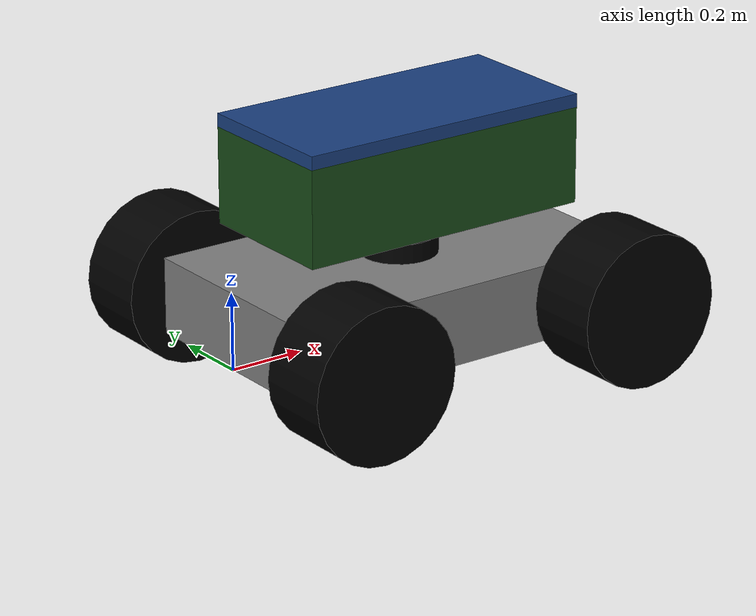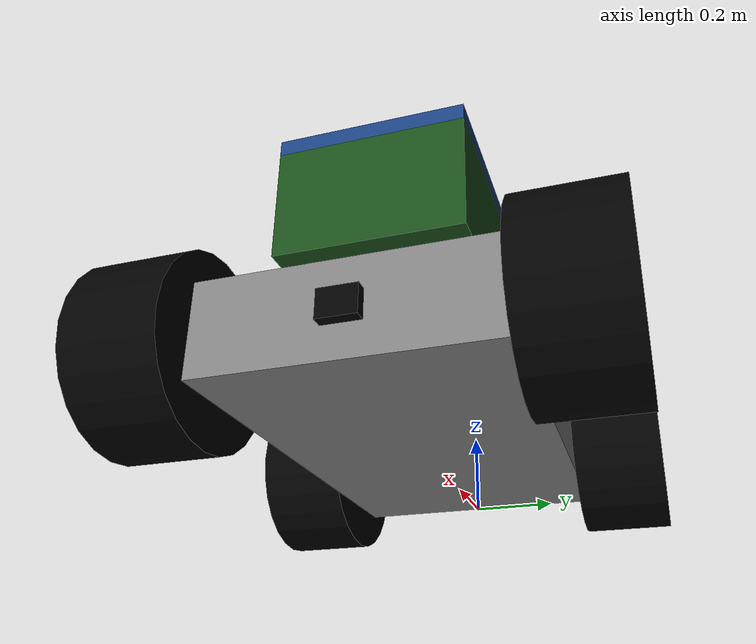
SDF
<?xml version="1.0" ?>
<sdf version="1.8">
  <model name="myrobot">
    <pose>0 0 0 0 0 0</pose>

    <!-- Base footprint (empty link for ground reference) -->
    <link name="base_footprint">
      <pose>0 0 0 0 0 0</pose>
    </link>

    <!-- Main chassis/base_link -->
    <link name="base_link">
      <pose>0.5 0 0 0 0 0</pose>
      <inertial>
        <mass>5.0</mass>
        <inertia>
          <ixx>0.1</ixx>
          <ixy>0.0</ixy>
          <ixz>0.0</ixz>
          <iyy>0.1</iyy>
          <iyz>0.0</iyz>
          <izz>0.1</izz>
        </inertia>
      </inertial>
      <visual name="base_visual">
        <pose>0 0 0.1 0 0 0</pose>
        <geometry>
          <box>
            <size>1 0.6 0.2</size>
          </box>
        </geometry>
        <material>
          <ambient>0.5 0.5 0.5 1</ambient>
          <diffuse>0.5 0.5 0.5 1</diffuse>
        </material>
      </visual>
      <collision name="base_collision">
        <pose>0 0 0.1 0 0 0</pose>
        <geometry>
          <box>
            <size>1 0.6 0.2</size>
          </box>
        </geometry>
      </collision>
    </link>

    <!-- Left Back Wheel -->
    <link name="lbwheel">
      <pose>0.1 0.3 0.1 -1.5708 0 0</pose>
      <inertial>
        <mass>0.5</mass>
        <inertia>
          <ixx>0.01</ixx>
          <ixy>0.0</ixy>
          <ixz>0.0</ixz>
          <iyy>0.01</iyy>
          <iyz>0.0</iyz>
          <izz>0.01</izz>
        </inertia>
      </inertial>
      <visual name="lbwheel_visual">
        <pose>0 0 0.1 0 0 0</pose>
        <geometry>
          <cylinder>
            <radius>0.2</radius>
            <length>0.2</length>
          </cylinder>
        </geometry>
        <material>
          <ambient>0 0 0 1</ambient>
          <diffuse>0 0 0 1</diffuse>
        </material>
      </visual>
      <collision name="lbwheel_collision">
        <pose>0 0 0.1 0 0 0</pose>
        <geometry>
          <cylinder>
            <radius>0.2</radius>
            <length>0.2</length>
          </cylinder>
        </geometry>
      </collision>
    </link>

    <!-- Left Front Wheel -->
    <link name="lfwheel">
      <pose>0.9 0.3 0.1 -1.5708 0 0</pose>
      <inertial>
        <mass>0.5</mass>
        <inertia>
          <ixx>0.01</ixx>
          <ixy>0.0</ixy>
          <ixz>0.0</ixz>
          <iyy>0.01</iyy>
          <iyz>0.0</iyz>
          <izz>0.01</izz>
        </inertia>
      </inertial>
      <visual name="lfwheel_visual">
        <pose>0 0 0.1 0 0 0</pose>
        <geometry>
          <cylinder>
            <radius>0.2</radius>
            <length>0.2</length>
          </cylinder>
        </geometry>
        <material>
          <ambient>0 0 0 1</ambient>
          <diffuse>0 0 0 1</diffuse>
        </material>
      </visual>
      <collision name="lfwheel_collision">
        <pose>0 0 0.1 0 0 0</pose>
        <geometry>
          <cylinder>
            <radius>0.2</radius>
            <length>0.2</length>
          </cylinder>
        </geometry>
      </collision>
    </link>

    <!-- Right Front Wheel -->
    <link name="rfwheel">
      <pose>0.9 -0.3 0.1 -1.5708 0 0</pose>
      <inertial>
        <mass>0.5</mass>
        <inertia>
          <ixx>0.01</ixx>
          <ixy>0.0</ixy>
          <ixz>0.0</ixz>
          <iyy>0.01</iyy>
          <iyz>0.0</iyz>
          <izz>0.01</izz>
        </inertia>
      </inertial>
      <visual name="rfwheel_visual">
        <pose>0 0 -0.1 0 0 0</pose>
        <geometry>
          <cylinder>
            <radius>0.2</radius>
            <length>0.2</length>
          </cylinder>
        </geometry>
        <material>
          <ambient>0 0 0 1</ambient>
          <diffuse>0 0 0 1</diffuse>
        </material>
      </visual>
      <collision name="rfwheel_collision">
        <pose>0 0 -0.1 0 0 0</pose>
        <geometry>
          <cylinder>
            <radius>0.2</radius>
            <length>0.2</length>
          </cylinder>
        </geometry>
      </collision>
    </link>

    <!-- Right Back Wheel -->
    <link name="rbwheel">
      <pose>0.1 -0.3 0.1 -1.5708 0 0</pose>
      <inertial>
        <mass>0.5</mass>
        <inertia>
          <ixx>0.01</ixx>
          <ixy>0.0</ixy>
          <ixz>0.0</ixz>
          <iyy>0.01</iyy>
          <iyz>0.0</iyz>
          <izz>0.01</izz>
        </inertia>
      </inertial>
      <visual name="rbwheel_visual">
        <pose>0 0 -0.1 0 0 0</pose>
        <geometry>
          <cylinder>
            <radius>0.2</radius>
            <length>0.2</length>
          </cylinder>
        </geometry>
        <material>
          <ambient>0 0 0 1</ambient>
          <diffuse>0 0 0 1</diffuse>
        </material>
      </visual>
      <collision name="rbwheel_collision">
        <pose>0 0 -0.1 0 0 0</pose>
        <geometry>
          <cylinder>
            <radius>0.2</radius>
            <length>0.2</length>
          </cylinder>
        </geometry>
      </collision>
    </link>

    <!-- Box -->
    <link name="box">
      <pose>0.5 0 0.3 0 0 0</pose>
      <inertial>
        <mass>1.0</mass>
        <inertia>
          <ixx>0.05</ixx>
          <ixy>0.0</ixy>
          <ixz>0.0</ixz>
          <iyy>0.05</iyy>
          <iyz>0.0</iyz>
          <izz>0.05</izz>
        </inertia>
      </inertial>
      <visual name="box_visual">
        <pose>0 0 0 0 0 0</pose>
        <geometry>
            <mesh>
              <uri>model://shooter/meshes/box.stl</uri>
              <scale>1 1 1</scale>
            </mesh>
        </geometry>
        <material>
          <ambient>0.1 0.3 0.1 1</ambient>
          <diffuse>0.1 0.3 0.1 1</diffuse>
        </material>
      </visual>
      <collision name="box_collision">
        <pose>0 0 0 0 0 0</pose>
        <geometry>
          <box>
            <size>0.8 0.4 0.5</size>
          </box>
        </geometry>
      </collision>
    </link>

    <!-- Lid -->
    <link name="lid">
      <pose>0.1 0 0.55 0 0 0</pose>
      <inertial>
        <pose>0.4 0 0.0175 0 0 0</pose>
        <mass>0.3</mass>
        <inertia>
          <ixx>0.001</ixx>
          <ixy>0.0</ixy>
          <ixz>0.0</ixz>
          <iyy>0.002</iyy>
          <iyz>0.0</iyz>
          <izz>0.002</izz>
        </inertia>
      </inertial>
      <visual name="lid_visual">
        <pose>0.4 0 0.0175 0 0 0</pose>
        <geometry>
          <box>
            <size>0.8 0.4 0.035</size>
          </box>
        </geometry>
        <material>
          <ambient>0.1 0.25 0.5 1</ambient>
          <diffuse>0.1 0.25 0.5 1</diffuse>
        </material>
      </visual>
      <collision name="lid_collision">
        <pose>0.4 0 0.0175 0 0 0</pose>
        <geometry>
          <box>
            <size>0.8 0.4 0.035</size>
          </box>
        </geometry>
      </collision>
    </link>

    <!-- Camera -->
    <link name="camera">
      <pose>1 0 0.1 0 0 0</pose>
      <inertial>
        <mass>0.1</mass>
        <inertia>
          <ixx>0.001</ixx>
          <ixy>0.0</ixy>
          <ixz>0.0</ixz>
          <iyy>0.001</iyy>
          <iyz>0.0</iyz>
          <izz>0.001</izz>
        </inertia>
      </inertial>
      <visual name="camera_visual">
        <pose>0 0 0 0 0 0</pose>
        <geometry>
          <box>
            <size>0.05 0.08 0.06</size>
          </box>
        </geometry>
        <material> <!-- black colour for camera-->
          <ambient>0 0 0 1</ambient>
          <diffuse>0 0 0 1</diffuse>
        </material>
      </visual>
      <sensor name="camera_sensor" type="camera">
        <pose>0.025 0 0 0 0 0</pose>
        <camera>
          <horizontal_fov>1.047</horizontal_fov>
          <image>
            <width>640</width>
            <height>480</height>
            <format>R8G8B8</format>
          </image>
          <clip>
            <near>0.1</near>
            <far>100</far>
          </clip>
        </camera>
        <always_on>1</always_on>
        <update_rate>30</update_rate>
        <visualize>true</visualize>
        <topic>camera/image_raw</topic>
      </sensor>
    </link>

    <!-- Camera RGB Optical Frame -->
    <link name="camera_rgb_optical_frame">
      <pose>1.025 0 0.1 0 0 0</pose>
      <inertial>
        <mass>0.001</mass>
        <inertia>
          <ixx>0.0001</ixx>
          <ixy>0.0</ixy>
          <ixz>0.0</ixz>
          <iyy>0.0001</iyy>
          <iyz>0.0</iyz>
          <izz>0.0001</izz>
        </inertia>
      </inertial>
    </link>

    <!-- Lidar -->
    <link name="lidar">
      <pose>0.5 0 0.2 0 0 0</pose>
      <inertial>
        <mass>0.5</mass>
        <inertia>
          <ixx>0.01</ixx>
          <ixy>0.0</ixy>
          <ixz>0.0</ixz>
          <iyy>0.01</iyy>
          <iyz>0.0</iyz>
          <izz>0.01</izz>
        </inertia>
      </inertial>
      <visual name="lidar_visual">
        <pose>0 0 0 0 0 0</pose>
        <geometry>
          <cylinder>
            <radius>0.1</radius>
            <length>0.1</length>
          </cylinder>
        </geometry>
        <material>
          <ambient>0 0 0 1</ambient>
          <diffuse>0 0 0 1</diffuse>
        </material>
      </visual>
      <collision name="lidar_collision">
        <pose>0 0 0 0 0 0</pose>
        <geometry>
          <cylinder>
            <radius>0.1</radius>
            <length>0.1</length>
          </cylinder>
        </geometry>
      </collision>
      <sensor name="lidar_sensor" type="gpu_lidar">
        <always_on>true</always_on>
        <visualize>true</visualize>
        <pose>-0.064 0 0.121 0 0 0</pose>
        <update_rate>10</update_rate>
        <topic>scan</topic>
        <gz_frame_id>lidar</gz_frame_id>
        <lidar>
          <scan>
            <horizontal>
              <samples>360</samples>
              <resolution>1.000000</resolution>
              <min_angle>0.000000</min_angle>
              <max_angle>6.280000</max_angle>
            </horizontal>
          </scan>
          <range>
            <min>0.120000</min>
            <max>4</max>
            <resolution>0.015000</resolution>
          </range>
          <noise>
            <type>gaussian</type>
            <mean>0.0</mean>
            <stddev>0.01</stddev>
          </noise>
        </lidar>
      </sensor>
    </link>

    <!-- Joints -->
    <joint name="chassijoint" type="fixed">
      <parent>base_footprint</parent>
      <child>base_link</child>
    </joint>

    <joint name="lbwheel_joint" type="revolute">
      <parent>base_link</parent>
      <child>lbwheel</child>
      <axis>
        <xyz>0 0 -1</xyz>
      </axis>
    </joint>

    <joint name="lfwheel_joint" type="revolute">
      <parent>base_link</parent>
      <child>lfwheel</child>
      <axis>
        <xyz>0 0 -1</xyz>
      </axis>
    </joint>

    <joint name="rfwheel_joint" type="revolute">
      <parent>base_link</parent>
      <child>rfwheel</child>
      <axis>
        <xyz>0 0 -1</xyz>
      </axis>
    </joint>

    <joint name="rbwheel_joint" type="revolute">
      <parent>base_link</parent>
      <child>rbwheel</child>
      <axis>
        <xyz>0 0 1</xyz>
      </axis>
    </joint>

    <joint name="box_joint" type="fixed">
      <parent>base_link</parent>
      <child>box</child>
    </joint>

    <joint name="lid_joint" type="revolute">
      <parent>box</parent>
      <child>lid</child>
      <axis>
        <xyz>0 -1 0</xyz>
        <limit>
          <lower>0</lower>
          <upper>1.57</upper>
          <effort>50</effort>
          <velocity>2</velocity>
        </limit>
      </axis>
    </joint>

    <joint name="camera_joint" type="fixed">
      <parent>base_link</parent>
      <child>camera</child>
    </joint>

    <joint name="camera_rgb_joint" type="fixed">
      <parent>camera</parent>
      <child>camera_rgb_optical_frame</child>
      <pose>0.025 0 0 -1.5708 0 -1.5708</pose>
    </joint>

    <joint name="lidar_joint" type="fixed">
      <parent>base_link</parent>
      <child>lidar</child>
    </joint>

    <!-- Gazebo plugins -->
    <plugin filename="gz-sim-joint-state-publisher-system" name="gz::sim::systems::JointStatePublisher">
      <topic>joint_states</topic>
    </plugin>

    <!-- Joint position controller for lid -->
    <plugin filename="gz-sim-joint-position-controller-system" name="gz::sim::systems::JointPositionController">
      <joint_name>lid_joint</joint_name>
      <topic>lid_joint_position_controller/command</topic>
      <initial_position>0</initial_position>
      <p_gain>3000</p_gain>
      <i_gain>2.0</i_gain>
      <d_gain>300</d_gain>
      <i_max>150</i_max>
      <i_min>-150</i_min>
      <cmd_max>15</cmd_max>
      <cmd_min>-15</cmd_min>
    </plugin>

    <!-- Camera sensor -->
    <plugin filename="gz-sim-sensors-system" name="gz::sim::systems::Sensors">
      <render_engine>ogre2</render_engine>
    </plugin>

  </model>
</sdf>
